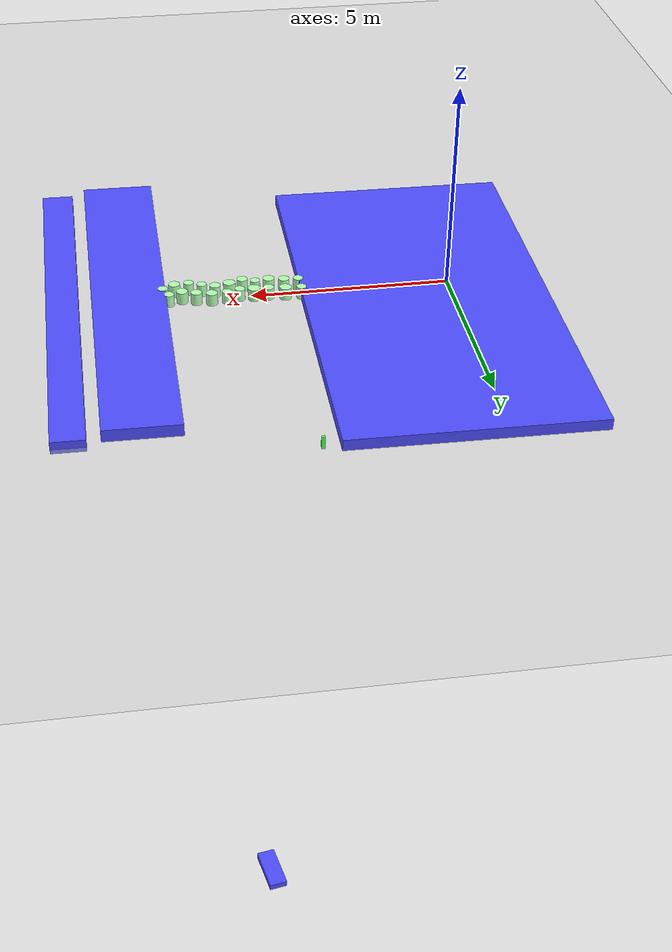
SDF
<sdf version="1.7">
 <world name="default">
  <light name="sun" type="directional">
   <pose>0 0 10 0 -0 0</pose>
   <diffuse>0.8 0.8 0.8 1</diffuse>
   <specular>0.2 0.2 0.2 1</specular>
   <attenuation>
    <range>1000</range>
    <constant>0.9</constant>
    <linear>0.01</linear>
    <quadratic>0.001</quadratic>
   </attenuation>
   <direction>-0.5 0.1 -0.9</direction>
   <spot><inner_angle>0</inner_angle><outer_angle>0</outer_angle><falloff>0</falloff></spot>
  </light>
  <model name="ground_plane">
   <static>1</static>
   <link name="link">
    <collision name="collision">
     <geometry><plane><normal>0 0 1</normal><size>100 100</size></plane></geometry>
     <surface><friction><ode><mu>100</mu><mu2>50</mu2></ode></friction></surface>
    </collision>
    <visual name="visual">
     <cast_shadows>0</cast_shadows>
     <geometry><plane><normal>0 0 1</normal><size>100 100</size></plane></geometry>
     <material>
      <script><uri>file://media/materials/scripts/gazebo.material</uri><name>Gazebo/Grey</name></script>
     </material>
    </visual>
   </link>
  </model>
  <gravity>0 0 -9.8</gravity>
  <magnetic_field>6e-06 2.3e-05 -4.2e-05</magnetic_field>
  <atmosphere type="adiabatic"/>
  <physics type="ode">
   <max_step_size>0.001</max_step_size>
   <real_time_factor>1</real_time_factor>
   <real_time_update_rate>1000</real_time_update_rate>
  </physics>
  <scene><ambient>0.4 0.4 0.4 1</ambient><background>0.7 0.7 0.7 1</background><shadows>1</shadows></scene>
  <spherical_coordinates>
   <surface_model>EARTH_WGS84</surface_model>
   <latitude_deg>0</latitude_deg>
   <longitude_deg>0</longitude_deg>
   <elevation>0</elevation>
   <heading_deg>0</heading_deg>
  </spherical_coordinates>
  <model name="ban_200_80_30_clone_clone">
   <link name="link">
    <inertial>
     <mass>1</mass>
     <inertia>
      <ixx>0.166667</ixx>
      <ixy>0</ixy>
      <ixz>0</ixz>
      <iyy>0.166667</iyy>
      <iyz>0</iyz>
      <izz>0.166667</izz>
     </inertia>
    </inertial>
    <visual name="visual">
     <geometry><box><size>2 0.8 0.3</size></box></geometry>
     <material>
      <script><name>Gazebo/Grey</name><uri>file://media/materials/scripts/gazebo.material</uri></script>
      <shader type="pixel"><normal_map>__default__</normal_map></shader>
      <ambient>0.3 0.3 1 1</ambient>
      <diffuse>0.7 0.7 0.7 1</diffuse>
      <specular>0.01 0.01 0.01 1</specular>
      <emissive>0 0 0 1</emissive>
     </material>
    </visual>
    <collision name="collision">
     <geometry><box><size>2 0.8 0.3</size></box></geometry>
     <surface>
      <friction>
       <ode><mu>1</mu><mu2>1</mu2><fdir1>0 0 0</fdir1><slip1>0</slip1><slip2>0</slip2></ode>
       <torsional>
        <coefficient>1</coefficient>
        <patch_radius>0</patch_radius>
        <surface_radius>0</surface_radius>
        <use_patch_radius>1</use_patch_radius>
        <ode><slip>0</slip></ode>
       </torsional>
      </friction>
      <bounce><restitution_coefficient>0</restitution_coefficient><threshold>1e+06</threshold></bounce>
      <contact>
       <collide_without_contact>0</collide_without_contact>
       <collide_without_contact_bitmask>1</collide_without_contact_bitmask>
       <collide_bitmask>1</collide_bitmask>
       <ode>
        <soft_cfm>0</soft_cfm>
        <soft_erp>0.2</soft_erp>
        <kp>1e+13</kp>
        <kd>1</kd>
        <max_vel>0.01</max_vel>
        <min_depth>0</min_depth>
       </ode>
       <bullet>
        <split_impulse>1</split_impulse>
        <split_impulse_penetration_threshold>-0.01</split_impulse_penetration_threshold>
        <soft_cfm>0</soft_cfm>
        <soft_erp>0.2</soft_erp>
        <kp>1e+13</kp>
        <kd>1</kd>
       </bullet>
      </contact>
     </surface>
    </collision>
   </link>
   <static>1</static>
   <pose>3.32802 -11.2985 -36.3188 0 0 -1.39548</pose>
  </model>
  <model name="ban_400_80_30_clone">
   <link name="link">
    <inertial>
     <mass>1</mass>
     <inertia>
      <ixx>0.166667</ixx>
      <ixy>0</ixy>
      <ixz>0</ixz>
      <iyy>0.166667</iyy>
      <iyz>0</iyz>
      <izz>0.166667</izz>
     </inertia>
    </inertial>
    <visual name="visual">
     <geometry><box><size>11.7457 0.8 0.3</size></box></geometry>
     <material>
      <script><name>Gazebo/Grey</name><uri>file://media/materials/scripts/gazebo.material</uri></script>
      <shader type="pixel"><normal_map>__default__</normal_map></shader>
      <ambient>0.3 0.3 1 1</ambient>
      <diffuse>0.7 0.7 0.7 1</diffuse>
      <specular>0.01 0.01 0.01 1</specular>
      <emissive>0 0 0 1</emissive>
     </material>
    </visual>
    <collision name="collision">
     <geometry><box><size>11.7457 0.8 0.3</size></box></geometry>
     <surface>
      <friction>
       <ode><mu>1</mu><mu2>1</mu2><fdir1>0 0 0</fdir1><slip1>0</slip1><slip2>0</slip2></ode>
       <torsional>
        <coefficient>1</coefficient>
        <patch_radius>0</patch_radius>
        <surface_radius>0</surface_radius>
        <use_patch_radius>1</use_patch_radius>
        <ode><slip>0</slip></ode>
       </torsional>
      </friction>
      <bounce><restitution_coefficient>0</restitution_coefficient><threshold>1e+06</threshold></bounce>
      <contact>
       <collide_without_contact>0</collide_without_contact>
       <collide_without_contact_bitmask>1</collide_without_contact_bitmask>
       <collide_bitmask>1</collide_bitmask>
       <ode>
        <soft_cfm>0</soft_cfm>
        <soft_erp>0.2</soft_erp>
        <kp>1e+13</kp>
        <kd>1</kd>
        <max_vel>0.01</max_vel>
        <min_depth>0</min_depth>
       </ode>
       <bullet>
        <split_impulse>1</split_impulse>
        <split_impulse_penetration_threshold>-0.01</split_impulse_penetration_threshold>
        <soft_cfm>0</soft_cfm>
        <soft_erp>0.2</soft_erp>
        <kp>1e+13</kp>
        <kd>1</kd>
       </bullet>
      </contact>
     </surface>
    </collision>
   </link>
   <static>1</static>
   <pose>9.68721 0.016567 0 0 -0 1.55763</pose>
  </model>
  <model name="mhz_8_30_clone">
   <link name="link">
    <inertial>
     <mass>1</mass>
     <inertia>
      <ixx>0.166667</ixx>
      <ixy>0</ixy>
      <ixz>0</ixz>
      <iyy>0.166667</iyy>
      <iyz>0</iyz>
      <izz>0.166667</izz>
     </inertia>
    </inertial>
    <visual name="visual">
     <geometry><box><size>0.08 0.08 0.3</size></box></geometry>
     <material>
      <script><name>Gazebo/Grey</name><uri>file://media/materials/scripts/gazebo.material</uri></script>
      <shader type="pixel"><normal_map>__default__</normal_map></shader>
      <ambient>0.3 1 0.3 1</ambient>
      <diffuse>0.7 0.7 0.7 1</diffuse>
      <specular>0.01 0.01 0.01 1</specular>
      <emissive>0 0 0 1</emissive>
     </material>
    </visual>
    <collision name="collision">
     <geometry><box><size>0.08 0.08 0.3</size></box></geometry>
     <surface>
      <friction>
       <ode><mu>1</mu><mu2>1</mu2><fdir1>0 0 0</fdir1><slip1>0</slip1><slip2>0</slip2></ode>
       <torsional>
        <coefficient>1</coefficient>
        <patch_radius>0</patch_radius>
        <surface_radius>0</surface_radius>
        <use_patch_radius>1</use_patch_radius>
        <ode><slip>0</slip></ode>
       </torsional>
      </friction>
      <bounce><restitution_coefficient>0</restitution_coefficient><threshold>1e+06</threshold></bounce>
      <contact>
       <collide_without_contact>0</collide_without_contact>
       <collide_without_contact_bitmask>1</collide_without_contact_bitmask>
       <collide_bitmask>1</collide_bitmask>
       <ode>
        <soft_cfm>0</soft_cfm>
        <soft_erp>0.2</soft_erp>
        <kp>1e+13</kp>
        <kd>1</kd>
        <max_vel>0.01</max_vel>
        <min_depth>0</min_depth>
       </ode>
       <bullet>
        <split_impulse>1</split_impulse>
        <split_impulse_penetration_threshold>-0.01</split_impulse_penetration_threshold>
        <soft_cfm>0</soft_cfm>
        <soft_erp>0.2</soft_erp>
        <kp>1e+13</kp>
        <kd>1</kd>
       </bullet>
      </contact>
     </surface>
    </collision>
   </link>
   <static>1</static>
   <pose>4.25594 6.71166 0.134436 0 -0 0</pose>
  </model>
  <model name="ban_400_80_30_clone_clone_clone">
   <link name="link">
    <inertial>
     <mass>1</mass>
     <inertia>
      <ixx>0.166667</ixx>
      <ixy>0</ixy>
      <ixz>0</ixz>
      <iyy>0.166667</iyy>
      <iyz>0</iyz>
      <izz>0.166667</izz>
     </inertia>
    </inertial>
    <visual name="visual">
     <geometry><box><size>11.703 1.83242 0.3</size></box></geometry>
     <material>
      <script><name>Gazebo/Grey</name><uri>file://media/materials/scripts/gazebo.material</uri></script>
      <shader type="pixel"><normal_map>__default__</normal_map></shader>
      <ambient>0.3 0.3 1 1</ambient>
      <diffuse>0.7 0.7 0.7 1</diffuse>
      <specular>0.01 0.01 0.01 1</specular>
      <emissive>0 0 0 1</emissive>
     </material>
    </visual>
    <collision name="collision">
     <geometry><box><size>11.703 1.83242 0.3</size></box></geometry>
     <surface>
      <friction>
       <ode><mu>1</mu><mu2>1</mu2><fdir1>0 0 0</fdir1><slip1>0</slip1><slip2>0</slip2></ode>
       <torsional>
        <coefficient>1</coefficient>
        <patch_radius>0</patch_radius>
        <surface_radius>0</surface_radius>
        <use_patch_radius>1</use_patch_radius>
        <ode><slip>0</slip></ode>
       </torsional>
      </friction>
      <bounce><restitution_coefficient>0</restitution_coefficient><threshold>1e+06</threshold></bounce>
      <contact>
       <collide_without_contact>0</collide_without_contact>
       <collide_without_contact_bitmask>1</collide_without_contact_bitmask>
       <collide_bitmask>1</collide_bitmask>
       <ode>
        <soft_cfm>0</soft_cfm>
        <soft_erp>0.2</soft_erp>
        <kp>1e+13</kp>
        <kd>1</kd>
        <max_vel>0.01</max_vel>
        <min_depth>0</min_depth>
       </ode>
       <bullet>
        <split_impulse>1</split_impulse>
        <split_impulse_penetration_threshold>-0.01</split_impulse_penetration_threshold>
        <soft_cfm>0</soft_cfm>
        <soft_erp>0.2</soft_erp>
        <kp>1e+13</kp>
        <kd>1</kd>
       </bullet>
      </contact>
     </surface>
    </collision>
   </link>
   <static>1</static>
   <pose>8.04186 -0.043434 0.139007 0 -0 1.55763</pose>
  </model>
  <model name="mhz_y_25_30_clone_13_clone_clone_9_clone">
   <link name="link">
    <inertial>
     <mass>1</mass>
     <inertia><ixx>0.145833</ixx><ixy>0</ixy><ixz>0</ixz><iyy>0.145833</iyy><iyz>0</iyz><izz>0.125</izz></inertia>
    </inertial>
    <visual name="visual">
     <geometry><cylinder><radius>0.125</radius><length>0.3</length></cylinder></geometry>
     <material>
      <script><name>Gazebo/Grey</name><uri>file://media/materials/scripts/gazebo.material</uri></script>
      <shader type="pixel"><normal_map>__default__</normal_map></shader>
      <ambient>0 1 0 0</ambient>
      <diffuse>0.7 1 0.7 1</diffuse>
      <specular>0.01 0.01 0.01 1</specular>
      <emissive>0 0 0 1</emissive>
     </material>
    </visual>
    <collision name="collision">
     <geometry><cylinder><radius>0.125</radius><length>0.3</length></cylinder></geometry>
     <surface>
      <friction>
       <ode><mu>1</mu><mu2>1</mu2><fdir1>0 0 0</fdir1><slip1>0</slip1><slip2>0</slip2></ode>
       <torsional>
        <coefficient>1</coefficient>
        <patch_radius>0</patch_radius>
        <surface_radius>0</surface_radius>
        <use_patch_radius>1</use_patch_radius>
        <ode><slip>0</slip></ode>
       </torsional>
      </friction>
      <bounce><restitution_coefficient>0</restitution_coefficient><threshold>1e+06</threshold></bounce>
      <contact>
       <collide_without_contact>0</collide_without_contact>
       <collide_without_contact_bitmask>1</collide_without_contact_bitmask>
       <collide_bitmask>1</collide_bitmask>
       <ode>
        <soft_cfm>0</soft_cfm>
        <soft_erp>0.2</soft_erp>
        <kp>1e+13</kp>
        <kd>1</kd>
        <max_vel>0.01</max_vel>
        <min_depth>0</min_depth>
       </ode>
       <bullet>
        <split_impulse>1</split_impulse>
        <split_impulse_penetration_threshold>-0.01</split_impulse_penetration_threshold>
        <soft_cfm>0</soft_cfm>
        <soft_erp>0.2</soft_erp>
        <kp>1e+13</kp>
        <kd>1</kd>
       </bullet>
      </contact>
     </surface>
    </collision>
   </link>
   <static>1</static>
   <pose>3.75494 0.215148 0.14679 0 -0 0</pose>
  </model>
  <model name="mhz_y_25_30_clone_13_clone_clone_9_clone_0">
   <link name="link">
    <inertial>
     <mass>1</mass>
     <inertia><ixx>0.145833</ixx><ixy>0</ixy><ixz>0</ixz><iyy>0.145833</iyy><iyz>0</iyz><izz>0.125</izz></inertia>
    </inertial>
    <visual name="visual">
     <geometry><cylinder><radius>0.125</radius><length>0.3</length></cylinder></geometry>
     <material>
      <script><name>Gazebo/Grey</name><uri>file://media/materials/scripts/gazebo.material</uri></script>
      <shader type="pixel"><normal_map>__default__</normal_map></shader>
      <ambient>0 1 0 0</ambient>
      <diffuse>0.7 1 0.7 1</diffuse>
      <specular>0.01 0.01 0.01 1</specular>
      <emissive>0 0 0 1</emissive>
     </material>
    </visual>
    <collision name="collision">
     <geometry><cylinder><radius>0.125</radius><length>0.3</length></cylinder></geometry>
     <surface>
      <friction>
       <ode><mu>1</mu><mu2>1</mu2><fdir1>0 0 0</fdir1><slip1>0</slip1><slip2>0</slip2></ode>
       <torsional>
        <coefficient>1</coefficient>
        <patch_radius>0</patch_radius>
        <surface_radius>0</surface_radius>
        <use_patch_radius>1</use_patch_radius>
        <ode><slip>0</slip></ode>
       </torsional>
      </friction>
      <bounce><restitution_coefficient>0</restitution_coefficient><threshold>1e+06</threshold></bounce>
      <contact>
       <collide_without_contact>0</collide_without_contact>
       <collide_without_contact_bitmask>1</collide_without_contact_bitmask>
       <collide_bitmask>1</collide_bitmask>
       <ode>
        <soft_cfm>0</soft_cfm>
        <soft_erp>0.2</soft_erp>
        <kp>1e+13</kp>
        <kd>1</kd>
        <max_vel>0.01</max_vel>
        <min_depth>0</min_depth>
       </ode>
       <bullet>
        <split_impulse>1</split_impulse>
        <split_impulse_penetration_threshold>-0.01</split_impulse_penetration_threshold>
        <soft_cfm>0</soft_cfm>
        <soft_erp>0.2</soft_erp>
        <kp>1e+13</kp>
        <kd>1</kd>
       </bullet>
      </contact>
     </surface>
    </collision>
   </link>
   <static>1</static>
   <pose>3.77586 -0.223314 0.14679 0 -0 0</pose>
  </model>
  <model name="ban_400_80_30_clone_clone_0_clone_clone">
   <link name="link">
    <inertial>
     <mass>1</mass>
     <inertia>
      <ixx>0.166667</ixx>
      <ixy>0</ixy>
      <ixz>0</ixz>
      <iyy>0.166667</iyy>
      <iyz>0</iyz>
      <izz>0.166667</izz>
     </inertia>
    </inertial>
    <visual name="visual">
     <geometry><box><size>11.7457 6.05528 0.274752</size></box></geometry>
     <material>
      <script><name>Gazebo/Grey</name><uri>file://media/materials/scripts/gazebo.material</uri></script>
      <shader type="pixel"><normal_map>__default__</normal_map></shader>
      <ambient>0.3 0.3 1 1</ambient>
      <diffuse>0.7 0.7 0.7 1</diffuse>
      <specular>0.01 0.01 0.01 1</specular>
      <emissive>0 0 0 1</emissive>
     </material>
    </visual>
    <collision name="collision">
     <geometry><box><size>11.7457 6.05528 0.274752</size></box></geometry>
     <surface>
      <friction>
       <ode><mu>1</mu><mu2>1</mu2><fdir1>0 0 0</fdir1><slip1>0</slip1><slip2>0</slip2></ode>
       <torsional>
        <coefficient>1</coefficient>
        <patch_radius>0</patch_radius>
        <surface_radius>0</surface_radius>
        <use_patch_radius>1</use_patch_radius>
        <ode><slip>0</slip></ode>
       </torsional>
      </friction>
      <bounce><restitution_coefficient>0</restitution_coefficient><threshold>1e+06</threshold></bounce>
      <contact>
       <collide_without_contact>0</collide_without_contact>
       <collide_without_contact_bitmask>1</collide_without_contact_bitmask>
       <collide_bitmask>1</collide_bitmask>
       <ode>
        <soft_cfm>0</soft_cfm>
        <soft_erp>0.2</soft_erp>
        <kp>1e+13</kp>
        <kd>1</kd>
        <max_vel>0.01</max_vel>
        <min_depth>0</min_depth>
       </ode>
       <bullet>
        <split_impulse>1</split_impulse>
        <split_impulse_penetration_threshold>-0.01</split_impulse_penetration_threshold>
        <soft_cfm>0</soft_cfm>
        <soft_erp>0.2</soft_erp>
        <kp>1e+13</kp>
        <kd>1</kd>
       </bullet>
      </contact>
     </surface>
    </collision>
   </link>
   <static>1</static>
   <pose>0.760648 1.08367 0.138376 0 -0 1.55763</pose>
  </model>
  <model name="mhz_y_25_30_clone_13_clone_clone_9_clone_0_clone">
   <link name="link">
    <inertial>
     <mass>1</mass>
     <inertia><ixx>0.145833</ixx><ixy>0</ixy><ixz>0</ixz><iyy>0.145833</iyy><iyz>0</iyz><izz>0.125</izz></inertia>
    </inertial>
    <visual name="visual">
     <geometry><cylinder><radius>0.135799</radius><length>0.3</length></cylinder></geometry>
     <material>
      <script><name>Gazebo/Grey</name><uri>file://media/materials/scripts/gazebo.material</uri></script>
      <shader type="pixel"><normal_map>__default__</normal_map></shader>
      <ambient>0 1 0 0</ambient>
      <diffuse>0.7 1 0.7 1</diffuse>
      <specular>0.01 0.01 0.01 1</specular>
      <emissive>0 0 0 1</emissive>
     </material>
    </visual>
    <collision name="collision">
     <geometry><cylinder><radius>0.135799</radius><length>0.3</length></cylinder></geometry>
     <surface>
      <friction>
       <ode><mu>1</mu><mu2>1</mu2><fdir1>0 0 0</fdir1><slip1>0</slip1><slip2>0</slip2></ode>
       <torsional>
        <coefficient>1</coefficient>
        <patch_radius>0</patch_radius>
        <surface_radius>0</surface_radius>
        <use_patch_radius>1</use_patch_radius>
        <ode><slip>0</slip></ode>
       </torsional>
      </friction>
      <bounce><restitution_coefficient>0</restitution_coefficient><threshold>1e+06</threshold></bounce>
      <contact>
       <collide_without_contact>0</collide_without_contact>
       <collide_without_contact_bitmask>1</collide_without_contact_bitmask>
       <collide_bitmask>1</collide_bitmask>
       <ode>
        <soft_cfm>0</soft_cfm>
        <soft_erp>0.2</soft_erp>
        <kp>1e+13</kp>
        <kd>1</kd>
        <max_vel>0.01</max_vel>
        <min_depth>0</min_depth>
       </ode>
       <bullet>
        <split_impulse>1</split_impulse>
        <split_impulse_penetration_threshold>-0.01</split_impulse_penetration_threshold>
        <soft_cfm>0</soft_cfm>
        <soft_erp>0.2</soft_erp>
        <kp>1e+13</kp>
        <kd>1</kd>
       </bullet>
      </contact>
     </surface>
    </collision>
   </link>
   <static>1</static>
   <pose>4.13513 -0.244411 0.14679 0 -0 0</pose>
  </model>
  <model name="mhz_y_25_30_clone_13_clone_clone_9_clone_0_clone_clone">
   <link name="link">
    <inertial>
     <mass>1</mass>
     <inertia><ixx>0.145833</ixx><ixy>0</ixy><ixz>0</ixz><iyy>0.145833</iyy><iyz>0</iyz><izz>0.125</izz></inertia>
    </inertial>
    <visual name="visual">
     <geometry><cylinder><radius>0.15149</radius><length>0.3</length></cylinder></geometry>
     <material>
      <script><name>Gazebo/Grey</name><uri>file://media/materials/scripts/gazebo.material</uri></script>
      <shader type="pixel"><normal_map>__default__</normal_map></shader>
      <ambient>0 1 0 0</ambient>
      <diffuse>0.7 1 0.7 1</diffuse>
      <specular>0.01 0.01 0.01 1</specular>
      <emissive>0 0 0 1</emissive>
     </material>
    </visual>
    <collision name="collision">
     <geometry><cylinder><radius>0.15149</radius><length>0.3</length></cylinder></geometry>
     <surface>
      <friction>
       <ode><mu>1</mu><mu2>1</mu2><fdir1>0 0 0</fdir1><slip1>0</slip1><slip2>0</slip2></ode>
       <torsional>
        <coefficient>1</coefficient>
        <patch_radius>0</patch_radius>
        <surface_radius>0</surface_radius>
        <use_patch_radius>1</use_patch_radius>
        <ode><slip>0</slip></ode>
       </torsional>
      </friction>
      <bounce><restitution_coefficient>0</restitution_coefficient><threshold>1e+06</threshold></bounce>
      <contact>
       <collide_without_contact>0</collide_without_contact>
       <collide_without_contact_bitmask>1</collide_without_contact_bitmask>
       <collide_bitmask>1</collide_bitmask>
       <ode>
        <soft_cfm>0</soft_cfm>
        <soft_erp>0.2</soft_erp>
        <kp>1e+13</kp>
        <kd>1</kd>
        <max_vel>0.01</max_vel>
        <min_depth>0</min_depth>
       </ode>
       <bullet>
        <split_impulse>1</split_impulse>
        <split_impulse_penetration_threshold>-0.01</split_impulse_penetration_threshold>
        <soft_cfm>0</soft_cfm>
        <soft_erp>0.2</soft_erp>
        <kp>1e+13</kp>
        <kd>1</kd>
       </bullet>
      </contact>
     </surface>
    </collision>
   </link>
   <static>1</static>
   <pose>4.15198 0.187283 0.14679 0 -0 0</pose>
  </model>
  <model name="mhz_y_25_30_clone_13_clone_clone_9_clone_0_clone_clone_0">
   <link name="link">
    <inertial>
     <mass>1</mass>
     <inertia><ixx>0.145833</ixx><ixy>0</ixy><ixz>0</ixz><iyy>0.145833</iyy><iyz>0</iyz><izz>0.125</izz></inertia>
    </inertial>
    <visual name="visual">
     <geometry><cylinder><radius>0.144423</radius><length>0.3</length></cylinder></geometry>
     <material>
      <script><name>Gazebo/Grey</name><uri>file://media/materials/scripts/gazebo.material</uri></script>
      <shader type="pixel"><normal_map>__default__</normal_map></shader>
      <ambient>0 1 0 0</ambient>
      <diffuse>0.7 1 0.7 1</diffuse>
      <specular>0.01 0.01 0.01 1</specular>
      <emissive>0 0 0 1</emissive>
     </material>
    </visual>
    <collision name="collision">
     <geometry><cylinder><radius>0.144423</radius><length>0.3</length></cylinder></geometry>
     <surface>
      <friction>
       <ode><mu>1</mu><mu2>1</mu2><fdir1>0 0 0</fdir1><slip1>0</slip1><slip2>0</slip2></ode>
       <torsional>
        <coefficient>1</coefficient>
        <patch_radius>0</patch_radius>
        <surface_radius>0</surface_radius>
        <use_patch_radius>1</use_patch_radius>
        <ode><slip>0</slip></ode>
       </torsional>
      </friction>
      <bounce><restitution_coefficient>0</restitution_coefficient><threshold>1e+06</threshold></bounce>
      <contact>
       <collide_without_contact>0</collide_without_contact>
       <collide_without_contact_bitmask>1</collide_without_contact_bitmask>
       <collide_bitmask>1</collide_bitmask>
       <ode>
        <soft_cfm>0</soft_cfm>
        <soft_erp>0.2</soft_erp>
        <kp>1e+13</kp>
        <kd>1</kd>
        <max_vel>0.01</max_vel>
        <min_depth>0</min_depth>
       </ode>
       <bullet>
        <split_impulse>1</split_impulse>
        <split_impulse_penetration_threshold>-0.01</split_impulse_penetration_threshold>
        <soft_cfm>0</soft_cfm>
        <soft_erp>0.2</soft_erp>
        <kp>1e+13</kp>
        <kd>1</kd>
       </bullet>
      </contact>
     </surface>
    </collision>
   </link>
   <static>1</static>
   <pose>4.51422 -0.312041 0.14679 0 -0 0</pose>
  </model>
  <model name="mhz_y_25_30_clone_13_clone_clone_9_clone_0_clone_clone_0_clone">
   <link name="link">
    <inertial>
     <mass>1</mass>
     <inertia><ixx>0.145833</ixx><ixy>0</ixy><ixz>0</ixz><iyy>0.145833</iyy><iyz>0</iyz><izz>0.125</izz></inertia>
    </inertial>
    <visual name="visual">
     <geometry><cylinder><radius>0.132128</radius><length>0.3</length></cylinder></geometry>
     <material>
      <script><name>Gazebo/Grey</name><uri>file://media/materials/scripts/gazebo.material</uri></script>
      <shader type="pixel"><normal_map>__default__</normal_map></shader>
      <ambient>0 1 0 0</ambient>
      <diffuse>0.7 1 0.7 1</diffuse>
      <specular>0.01 0.01 0.01 1</specular>
      <emissive>0 0 0 1</emissive>
     </material>
    </visual>
    <collision name="collision">
     <geometry><cylinder><radius>0.132128</radius><length>0.3</length></cylinder></geometry>
     <surface>
      <friction>
       <ode><mu>1</mu><mu2>1</mu2><fdir1>0 0 0</fdir1><slip1>0</slip1><slip2>0</slip2></ode>
       <torsional>
        <coefficient>1</coefficient>
        <patch_radius>0</patch_radius>
        <surface_radius>0</surface_radius>
        <use_patch_radius>1</use_patch_radius>
        <ode><slip>0</slip></ode>
       </torsional>
      </friction>
      <bounce><restitution_coefficient>0</restitution_coefficient><threshold>1e+06</threshold></bounce>
      <contact>
       <collide_without_contact>0</collide_without_contact>
       <collide_without_contact_bitmask>1</collide_without_contact_bitmask>
       <collide_bitmask>1</collide_bitmask>
       <ode>
        <soft_cfm>0</soft_cfm>
        <soft_erp>0.2</soft_erp>
        <kp>1e+13</kp>
        <kd>1</kd>
        <max_vel>0.01</max_vel>
        <min_depth>0</min_depth>
       </ode>
       <bullet>
        <split_impulse>1</split_impulse>
        <split_impulse_penetration_threshold>-0.01</split_impulse_penetration_threshold>
        <soft_cfm>0</soft_cfm>
        <soft_erp>0.2</soft_erp>
        <kp>1e+13</kp>
        <kd>1</kd>
       </bullet>
      </contact>
     </surface>
    </collision>
   </link>
   <static>1</static>
   <pose>4.56179 0.130108 0.14679 0 -0 0</pose>
  </model>
  <model name="mhz_y_25_30_clone_13_clone_clone_9_clone_0_clone_clone_0_clone_0">
   <link name="link">
    <inertial>
     <mass>1</mass>
     <inertia><ixx>0.145833</ixx><ixy>0</ixy><ixz>0</ixz><iyy>0.145833</iyy><iyz>0</iyz><izz>0.125</izz></inertia>
    </inertial>
    <visual name="visual">
     <geometry><cylinder><radius>0.125</radius><length>0.3</length></cylinder></geometry>
     <material>
      <script><name>Gazebo/Grey</name><uri>file://media/materials/scripts/gazebo.material</uri></script>
      <shader type="pixel"><normal_map>__default__</normal_map></shader>
      <ambient>0 1 0 0</ambient>
      <diffuse>0.7 1 0.7 1</diffuse>
      <specular>0.01 0.01 0.01 1</specular>
      <emissive>0 0 0 1</emissive>
     </material>
    </visual>
    <collision name="collision">
     <geometry><cylinder><radius>0.125</radius><length>0.3</length></cylinder></geometry>
     <surface>
      <friction>
       <ode><mu>1</mu><mu2>1</mu2><fdir1>0 0 0</fdir1><slip1>0</slip1><slip2>0</slip2></ode>
       <torsional>
        <coefficient>1</coefficient>
        <patch_radius>0</patch_radius>
        <surface_radius>0</surface_radius>
        <use_patch_radius>1</use_patch_radius>
        <ode><slip>0</slip></ode>
       </torsional>
      </friction>
      <bounce><restitution_coefficient>0</restitution_coefficient><threshold>1e+06</threshold></bounce>
      <contact>
       <collide_without_contact>0</collide_without_contact>
       <collide_without_contact_bitmask>1</collide_without_contact_bitmask>
       <collide_bitmask>1</collide_bitmask>
       <ode>
        <soft_cfm>0</soft_cfm>
        <soft_erp>0.2</soft_erp>
        <kp>1e+13</kp>
        <kd>1</kd>
        <max_vel>0.01</max_vel>
        <min_depth>0</min_depth>
       </ode>
       <bullet>
        <split_impulse>1</split_impulse>
        <split_impulse_penetration_threshold>-0.01</split_impulse_penetration_threshold>
        <soft_cfm>0</soft_cfm>
        <soft_erp>0.2</soft_erp>
        <kp>1e+13</kp>
        <kd>1</kd>
       </bullet>
      </contact>
     </surface>
    </collision>
   </link>
   <static>1</static>
   <pose>4.86441 -0.257855 0.14679 0 -0 0</pose>
  </model>
  <model name="mhz_y_25_30_clone_13_clone_clone_9_clone_0_clone_clone_0_clone_clone">
   <link name="link">
    <inertial>
     <mass>1</mass>
     <inertia><ixx>0.145833</ixx><ixy>0</ixy><ixz>0</ixz><iyy>0.145833</iyy><iyz>0</iyz><izz>0.125</izz></inertia>
    </inertial>
    <visual name="visual">
     <geometry><cylinder><radius>0.156911</radius><length>0.3</length></cylinder></geometry>
     <material>
      <script><name>Gazebo/Grey</name><uri>file://media/materials/scripts/gazebo.material</uri></script>
      <shader type="pixel"><normal_map>__default__</normal_map></shader>
      <ambient>0 1 0 0</ambient>
      <diffuse>0.7 1 0.7 1</diffuse>
      <specular>0.01 0.01 0.01 1</specular>
      <emissive>0 0 0 1</emissive>
     </material>
    </visual>
    <collision name="collision">
     <geometry><cylinder><radius>0.156911</radius><length>0.3</length></cylinder></geometry>
     <surface>
      <friction>
       <ode><mu>1</mu><mu2>1</mu2><fdir1>0 0 0</fdir1><slip1>0</slip1><slip2>0</slip2></ode>
       <torsional>
        <coefficient>1</coefficient>
        <patch_radius>0</patch_radius>
        <surface_radius>0</surface_radius>
        <use_patch_radius>1</use_patch_radius>
        <ode><slip>0</slip></ode>
       </torsional>
      </friction>
      <bounce><restitution_coefficient>0</restitution_coefficient><threshold>1e+06</threshold></bounce>
      <contact>
       <collide_without_contact>0</collide_without_contact>
       <collide_without_contact_bitmask>1</collide_without_contact_bitmask>
       <collide_bitmask>1</collide_bitmask>
       <ode>
        <soft_cfm>0</soft_cfm>
        <soft_erp>0.2</soft_erp>
        <kp>1e+13</kp>
        <kd>1</kd>
        <max_vel>0.01</max_vel>
        <min_depth>0</min_depth>
       </ode>
       <bullet>
        <split_impulse>1</split_impulse>
        <split_impulse_penetration_threshold>-0.01</split_impulse_penetration_threshold>
        <soft_cfm>0</soft_cfm>
        <soft_erp>0.2</soft_erp>
        <kp>1e+13</kp>
        <kd>1</kd>
       </bullet>
      </contact>
     </surface>
    </collision>
   </link>
   <static>1</static>
   <pose>4.93275 0.119572 0.14679 0 -0 0</pose>
  </model>
  <model name="mhz_y_25_30_clone_13_clone_clone_9_clone_0_clone_clone_0_clone_0_clone">
   <link name="link">
    <inertial>
     <mass>1</mass>
     <inertia><ixx>0.145833</ixx><ixy>0</ixy><ixz>0</ixz><iyy>0.145833</iyy><iyz>0</iyz><izz>0.125</izz></inertia>
    </inertial>
    <visual name="visual">
     <geometry><cylinder><radius>0.136343</radius><length>0.3</length></cylinder></geometry>
     <material>
      <script><name>Gazebo/Grey</name><uri>file://media/materials/scripts/gazebo.material</uri></script>
      <shader type="pixel"><normal_map>__default__</normal_map></shader>
      <ambient>0 1 0 0</ambient>
      <diffuse>0.7 1 0.7 1</diffuse>
      <specular>0.01 0.01 0.01 1</specular>
      <emissive>0 0 0 1</emissive>
     </material>
    </visual>
    <collision name="collision">
     <geometry><cylinder><radius>0.136343</radius><length>0.3</length></cylinder></geometry>
     <surface>
      <friction>
       <ode><mu>1</mu><mu2>1</mu2><fdir1>0 0 0</fdir1><slip1>0</slip1><slip2>0</slip2></ode>
       <torsional>
        <coefficient>1</coefficient>
        <patch_radius>0</patch_radius>
        <surface_radius>0</surface_radius>
        <use_patch_radius>1</use_patch_radius>
        <ode><slip>0</slip></ode>
       </torsional>
      </friction>
      <bounce><restitution_coefficient>0</restitution_coefficient><threshold>1e+06</threshold></bounce>
      <contact>
       <collide_without_contact>0</collide_without_contact>
       <collide_without_contact_bitmask>1</collide_without_contact_bitmask>
       <collide_bitmask>1</collide_bitmask>
       <ode>
        <soft_cfm>0</soft_cfm>
        <soft_erp>0.2</soft_erp>
        <kp>1e+13</kp>
        <kd>1</kd>
        <max_vel>0.01</max_vel>
        <min_depth>0</min_depth>
       </ode>
       <bullet>
        <split_impulse>1</split_impulse>
        <split_impulse_penetration_threshold>-0.01</split_impulse_penetration_threshold>
        <soft_cfm>0</soft_cfm>
        <soft_erp>0.2</soft_erp>
        <kp>1e+13</kp>
        <kd>1</kd>
       </bullet>
      </contact>
     </surface>
    </collision>
   </link>
   <static>1</static>
   <pose>5.17535 -0.375834 0.14679 0 -0 0</pose>
  </model>
  <model name="mhz_y_25_30_clone_13_clone_clone_9_clone_0_clone_clone_0_clone_0_clone_clone">
   <link name="link">
    <inertial>
     <mass>1</mass>
     <inertia><ixx>0.145833</ixx><ixy>0</ixy><ixz>0</ixz><iyy>0.145833</iyy><iyz>0</iyz><izz>0.125</izz></inertia>
    </inertial>
    <visual name="visual">
     <geometry><cylinder><radius>0.128775</radius><length>0.3</length></cylinder></geometry>
     <material>
      <script><name>Gazebo/Grey</name><uri>file://media/materials/scripts/gazebo.material</uri></script>
      <shader type="pixel"><normal_map>__default__</normal_map></shader>
      <ambient>0 1 0 0</ambient>
      <diffuse>0.7 1 0.7 1</diffuse>
      <specular>0.01 0.01 0.01 1</specular>
      <emissive>0 0 0 1</emissive>
     </material>
    </visual>
    <collision name="collision">
     <geometry><cylinder><radius>0.128775</radius><length>0.3</length></cylinder></geometry>
     <surface>
      <friction>
       <ode><mu>1</mu><mu2>1</mu2><fdir1>0 0 0</fdir1><slip1>0</slip1><slip2>0</slip2></ode>
       <torsional>
        <coefficient>1</coefficient>
        <patch_radius>0</patch_radius>
        <surface_radius>0</surface_radius>
        <use_patch_radius>1</use_patch_radius>
        <ode><slip>0</slip></ode>
       </torsional>
      </friction>
      <bounce><restitution_coefficient>0</restitution_coefficient><threshold>1e+06</threshold></bounce>
      <contact>
       <collide_without_contact>0</collide_without_contact>
       <collide_without_contact_bitmask>1</collide_without_contact_bitmask>
       <collide_bitmask>1</collide_bitmask>
       <ode>
        <soft_cfm>0</soft_cfm>
        <soft_erp>0.2</soft_erp>
        <kp>1e+13</kp>
        <kd>1</kd>
        <max_vel>0.01</max_vel>
        <min_depth>0</min_depth>
       </ode>
       <bullet>
        <split_impulse>1</split_impulse>
        <split_impulse_penetration_threshold>-0.01</split_impulse_penetration_threshold>
        <soft_cfm>0</soft_cfm>
        <soft_erp>0.2</soft_erp>
        <kp>1e+13</kp>
        <kd>1</kd>
       </bullet>
      </contact>
     </surface>
    </collision>
   </link>
   <static>1</static>
   <pose>5.28548 0.100482 0.14679 0 -0 0</pose>
  </model>
  <model name="mhz_y_25_30_clone_13_clone_clone_9_clone_0_clone_clone_0_clone_0_clone_clone_clone">
   <link name="link">
    <inertial>
     <mass>1</mass>
     <inertia><ixx>0.145833</ixx><ixy>0</ixy><ixz>0</ixz><iyy>0.145833</iyy><iyz>0</iyz><izz>0.125</izz></inertia>
    </inertial>
    <visual name="visual">
     <geometry><cylinder><radius>0.151445</radius><length>0.3</length></cylinder></geometry>
     <material>
      <script><name>Gazebo/Grey</name><uri>file://media/materials/scripts/gazebo.material</uri></script>
      <shader type="pixel"><normal_map>__default__</normal_map></shader>
      <ambient>0 1 0 0</ambient>
      <diffuse>0.7 1 0.7 1</diffuse>
      <specular>0.01 0.01 0.01 1</specular>
      <emissive>0 0 0 1</emissive>
     </material>
    </visual>
    <collision name="collision">
     <geometry><cylinder><radius>0.151445</radius><length>0.3</length></cylinder></geometry>
     <surface>
      <friction>
       <ode><mu>1</mu><mu2>1</mu2><fdir1>0 0 0</fdir1><slip1>0</slip1><slip2>0</slip2></ode>
       <torsional>
        <coefficient>1</coefficient>
        <patch_radius>0</patch_radius>
        <surface_radius>0</surface_radius>
        <use_patch_radius>1</use_patch_radius>
        <ode><slip>0</slip></ode>
       </torsional>
      </friction>
      <bounce><restitution_coefficient>0</restitution_coefficient><threshold>1e+06</threshold></bounce>
      <contact>
       <collide_without_contact>0</collide_without_contact>
       <collide_without_contact_bitmask>1</collide_without_contact_bitmask>
       <collide_bitmask>1</collide_bitmask>
       <ode>
        <soft_cfm>0</soft_cfm>
        <soft_erp>0.2</soft_erp>
        <kp>1e+13</kp>
        <kd>1</kd>
        <max_vel>0.01</max_vel>
        <min_depth>0</min_depth>
       </ode>
       <bullet>
        <split_impulse>1</split_impulse>
        <split_impulse_penetration_threshold>-0.01</split_impulse_penetration_threshold>
        <soft_cfm>0</soft_cfm>
        <soft_erp>0.2</soft_erp>
        <kp>1e+13</kp>
        <kd>1</kd>
       </bullet>
      </contact>
     </surface>
    </collision>
   </link>
   <static>1</static>
   <pose>5.51402 -0.239631 0.14679 0 -0 0</pose>
  </model>
  <model name="mhz_y_25_30_clone_13_clone_clone_9_clone_0_clone_clone_0_clone_0_clone_clone_clone_clone">
   <link name="link">
    <inertial>
     <mass>1</mass>
     <inertia><ixx>0.145833</ixx><ixy>0</ixy><ixz>0</ixz><iyy>0.145833</iyy><iyz>0</iyz><izz>0.125</izz></inertia>
    </inertial>
    <visual name="visual">
     <geometry><cylinder><radius>0.125</radius><length>0.3</length></cylinder></geometry>
     <material>
      <script><name>Gazebo/Grey</name><uri>file://media/materials/scripts/gazebo.material</uri></script>
      <shader type="pixel"><normal_map>__default__</normal_map></shader>
      <ambient>0 1 0 0</ambient>
      <diffuse>0.7 1 0.7 1</diffuse>
      <specular>0.01 0.01 0.01 1</specular>
      <emissive>0 0 0 1</emissive>
     </material>
    </visual>
    <collision name="collision">
     <geometry><cylinder><radius>0.125</radius><length>0.3</length></cylinder></geometry>
     <surface>
      <friction>
       <ode><mu>1</mu><mu2>1</mu2><fdir1>0 0 0</fdir1><slip1>0</slip1><slip2>0</slip2></ode>
       <torsional>
        <coefficient>1</coefficient>
        <patch_radius>0</patch_radius>
        <surface_radius>0</surface_radius>
        <use_patch_radius>1</use_patch_radius>
        <ode><slip>0</slip></ode>
       </torsional>
      </friction>
      <bounce><restitution_coefficient>0</restitution_coefficient><threshold>1e+06</threshold></bounce>
      <contact>
       <collide_without_contact>0</collide_without_contact>
       <collide_without_contact_bitmask>1</collide_without_contact_bitmask>
       <collide_bitmask>1</collide_bitmask>
       <ode>
        <soft_cfm>0</soft_cfm>
        <soft_erp>0.2</soft_erp>
        <kp>1e+13</kp>
        <kd>1</kd>
        <max_vel>0.01</max_vel>
        <min_depth>0</min_depth>
       </ode>
       <bullet>
        <split_impulse>1</split_impulse>
        <split_impulse_penetration_threshold>-0.01</split_impulse_penetration_threshold>
        <soft_cfm>0</soft_cfm>
        <soft_erp>0.2</soft_erp>
        <kp>1e+13</kp>
        <kd>1</kd>
       </bullet>
      </contact>
     </surface>
    </collision>
   </link>
   <static>1</static>
   <pose>5.61486 0.195523 0.14679 0 -0 0</pose>
  </model>
  <model name="mhz_y_25_30_clone_13_clone_clone_9_clone_0_clone_clone_0_clone_0_clone_clone_clone_clone_clone">
   <link name="link">
    <inertial>
     <mass>1</mass>
     <inertia><ixx>0.145833</ixx><ixy>0</ixy><ixz>0</ixz><iyy>0.145833</iyy><iyz>0</iyz><izz>0.125</izz></inertia>
    </inertial>
    <visual name="visual">
     <geometry><cylinder><radius>0.139046</radius><length>0.3</length></cylinder></geometry>
     <material>
      <script><name>Gazebo/Grey</name><uri>file://media/materials/scripts/gazebo.material</uri></script>
      <shader type="pixel"><normal_map>__default__</normal_map></shader>
      <ambient>0 1 0 0</ambient>
      <diffuse>0.7 1 0.7 1</diffuse>
      <specular>0.01 0.01 0.01 1</specular>
      <emissive>0 0 0 1</emissive>
     </material>
    </visual>
    <collision name="collision">
     <geometry><cylinder><radius>0.139046</radius><length>0.3</length></cylinder></geometry>
     <surface>
      <friction>
       <ode><mu>1</mu><mu2>1</mu2><fdir1>0 0 0</fdir1><slip1>0</slip1><slip2>0</slip2></ode>
       <torsional>
        <coefficient>1</coefficient>
        <patch_radius>0</patch_radius>
        <surface_radius>0</surface_radius>
        <use_patch_radius>1</use_patch_radius>
        <ode><slip>0</slip></ode>
       </torsional>
      </friction>
      <bounce><restitution_coefficient>0</restitution_coefficient><threshold>1e+06</threshold></bounce>
      <contact>
       <collide_without_contact>0</collide_without_contact>
       <collide_without_contact_bitmask>1</collide_without_contact_bitmask>
       <collide_bitmask>1</collide_bitmask>
       <ode>
        <soft_cfm>0</soft_cfm>
        <soft_erp>0.2</soft_erp>
        <kp>1e+13</kp>
        <kd>1</kd>
        <max_vel>0.01</max_vel>
        <min_depth>0</min_depth>
       </ode>
       <bullet>
        <split_impulse>1</split_impulse>
        <split_impulse_penetration_threshold>-0.01</split_impulse_penetration_threshold>
        <soft_cfm>0</soft_cfm>
        <soft_erp>0.2</soft_erp>
        <kp>1e+13</kp>
        <kd>1</kd>
       </bullet>
      </contact>
     </surface>
    </collision>
   </link>
   <static>1</static>
   <pose>5.88282 -0.157693 0.14679 0 -0 0</pose>
  </model>
  <model name="mhz_y_25_30_clone_13_clone_clone_9_clone_0_clone_clone_0_clone_0_clone_clone_clone_clone_clone_clone">
   <link name="link">
    <inertial>
     <mass>1</mass>
     <inertia><ixx>0.145833</ixx><ixy>0</ixy><ixz>0</ixz><iyy>0.145833</iyy><iyz>0</iyz><izz>0.125</izz></inertia>
    </inertial>
    <visual name="visual">
     <geometry><cylinder><radius>0.142831</radius><length>0.3</length></cylinder></geometry>
     <material>
      <script><name>Gazebo/Grey</name><uri>file://media/materials/scripts/gazebo.material</uri></script>
      <shader type="pixel"><normal_map>__default__</normal_map></shader>
      <ambient>0 1 0 0</ambient>
      <diffuse>0.7 1 0.7 1</diffuse>
      <specular>0.01 0.01 0.01 1</specular>
      <emissive>0 0 0 1</emissive>
     </material>
    </visual>
    <collision name="collision">
     <geometry><cylinder><radius>0.142831</radius><length>0.3</length></cylinder></geometry>
     <surface>
      <friction>
       <ode><mu>1</mu><mu2>1</mu2><fdir1>0 0 0</fdir1><slip1>0</slip1><slip2>0</slip2></ode>
       <torsional>
        <coefficient>1</coefficient>
        <patch_radius>0</patch_radius>
        <surface_radius>0</surface_radius>
        <use_patch_radius>1</use_patch_radius>
        <ode><slip>0</slip></ode>
       </torsional>
      </friction>
      <bounce><restitution_coefficient>0</restitution_coefficient><threshold>1e+06</threshold></bounce>
      <contact>
       <collide_without_contact>0</collide_without_contact>
       <collide_without_contact_bitmask>1</collide_without_contact_bitmask>
       <collide_bitmask>1</collide_bitmask>
       <ode>
        <soft_cfm>0</soft_cfm>
        <soft_erp>0.2</soft_erp>
        <kp>1e+13</kp>
        <kd>1</kd>
        <max_vel>0.01</max_vel>
        <min_depth>0</min_depth>
       </ode>
       <bullet>
        <split_impulse>1</split_impulse>
        <split_impulse_penetration_threshold>-0.01</split_impulse_penetration_threshold>
        <soft_cfm>0</soft_cfm>
        <soft_erp>0.2</soft_erp>
        <kp>1e+13</kp>
        <kd>1</kd>
       </bullet>
      </contact>
     </surface>
    </collision>
   </link>
   <static>1</static>
   <pose>5.99607 0.208113 0.14679 0 -0 0</pose>
  </model>
  <model name="mhz_y_25_30_clone_13_clone_clone_9_clone_0_clone_clone_0_clone_0_clone_clone_clone_clone_clone_clone_0">
   <link name="link">
    <inertial>
     <mass>1</mass>
     <inertia><ixx>0.145833</ixx><ixy>0</ixy><ixz>0</ixz><iyy>0.145833</iyy><iyz>0</iyz><izz>0.125</izz></inertia>
    </inertial>
    <visual name="visual">
     <geometry><cylinder><radius>0.125</radius><length>0.3</length></cylinder></geometry>
     <material>
      <script><name>Gazebo/Grey</name><uri>file://media/materials/scripts/gazebo.material</uri></script>
      <shader type="pixel"><normal_map>__default__</normal_map></shader>
      <ambient>0 1 0 0</ambient>
      <diffuse>0.7 1 0.7 1</diffuse>
      <specular>0.01 0.01 0.01 1</specular>
      <emissive>0 0 0 1</emissive>
     </material>
    </visual>
    <collision name="collision">
     <geometry><cylinder><radius>0.125</radius><length>0.3</length></cylinder></geometry>
     <surface>
      <friction>
       <ode><mu>1</mu><mu2>1</mu2><fdir1>0 0 0</fdir1><slip1>0</slip1><slip2>0</slip2></ode>
       <torsional>
        <coefficient>1</coefficient>
        <patch_radius>0</patch_radius>
        <surface_radius>0</surface_radius>
        <use_patch_radius>1</use_patch_radius>
        <ode><slip>0</slip></ode>
       </torsional>
      </friction>
      <bounce><restitution_coefficient>0</restitution_coefficient><threshold>1e+06</threshold></bounce>
      <contact>
       <collide_without_contact>0</collide_without_contact>
       <collide_without_contact_bitmask>1</collide_without_contact_bitmask>
       <collide_bitmask>1</collide_bitmask>
       <ode>
        <soft_cfm>0</soft_cfm>
        <soft_erp>0.2</soft_erp>
        <kp>1e+13</kp>
        <kd>1</kd>
        <max_vel>0.01</max_vel>
        <min_depth>0</min_depth>
       </ode>
       <bullet>
        <split_impulse>1</split_impulse>
        <split_impulse_penetration_threshold>-0.01</split_impulse_penetration_threshold>
        <soft_cfm>0</soft_cfm>
        <soft_erp>0.2</soft_erp>
        <kp>1e+13</kp>
        <kd>1</kd>
       </bullet>
      </contact>
     </surface>
    </collision>
   </link>
   <static>1</static>
   <pose>6.20414 -0.259766 0.14679 0 -0 0</pose>
  </model>
  <model name="mhz_y_25_30_clone_13_clone_clone_9_clone_0_clone_clone_0_clone_0_clone_clone_clone_clone_clone_clone_0_clone">
   <link name="link">
    <inertial>
     <mass>1</mass>
     <inertia><ixx>0.145833</ixx><ixy>0</ixy><ixz>0</ixz><iyy>0.145833</iyy><iyz>0</iyz><izz>0.125</izz></inertia>
    </inertial>
    <visual name="visual">
     <geometry><cylinder><radius>0.142272</radius><length>0.3</length></cylinder></geometry>
     <material>
      <script><name>Gazebo/Grey</name><uri>file://media/materials/scripts/gazebo.material</uri></script>
      <shader type="pixel"><normal_map>__default__</normal_map></shader>
      <ambient>0 1 0 0</ambient>
      <diffuse>0.7 1 0.7 1</diffuse>
      <specular>0.01 0.01 0.01 1</specular>
      <emissive>0 0 0 1</emissive>
     </material>
    </visual>
    <collision name="collision">
     <geometry><cylinder><radius>0.142272</radius><length>0.3</length></cylinder></geometry>
     <surface>
      <friction>
       <ode><mu>1</mu><mu2>1</mu2><fdir1>0 0 0</fdir1><slip1>0</slip1><slip2>0</slip2></ode>
       <torsional>
        <coefficient>1</coefficient>
        <patch_radius>0</patch_radius>
        <surface_radius>0</surface_radius>
        <use_patch_radius>1</use_patch_radius>
        <ode><slip>0</slip></ode>
       </torsional>
      </friction>
      <bounce><restitution_coefficient>0</restitution_coefficient><threshold>1e+06</threshold></bounce>
      <contact>
       <collide_without_contact>0</collide_without_contact>
       <collide_without_contact_bitmask>1</collide_without_contact_bitmask>
       <collide_bitmask>1</collide_bitmask>
       <ode>
        <soft_cfm>0</soft_cfm>
        <soft_erp>0.2</soft_erp>
        <kp>1e+13</kp>
        <kd>1</kd>
        <max_vel>0.01</max_vel>
        <min_depth>0</min_depth>
       </ode>
       <bullet>
        <split_impulse>1</split_impulse>
        <split_impulse_penetration_threshold>-0.01</split_impulse_penetration_threshold>
        <soft_cfm>0</soft_cfm>
        <soft_erp>0.2</soft_erp>
        <kp>1e+13</kp>
        <kd>1</kd>
       </bullet>
      </contact>
     </surface>
    </collision>
   </link>
   <static>1</static>
   <pose>6.37221 0.129368 0.14679 0 -0 0</pose>
  </model>
  <model name="mhz_y_25_30_clone_13_clone_clone_9_clone_0_clone_clone_0_clone_0_clone_clone_clone_clone_clone_clone_0_clone_0">
   <link name="link">
    <inertial>
     <mass>1</mass>
     <inertia><ixx>0.145833</ixx><ixy>0</ixy><ixz>0</ixz><iyy>0.145833</iyy><iyz>0</iyz><izz>0.125</izz></inertia>
    </inertial>
    <visual name="visual">
     <geometry><cylinder><radius>0.125</radius><length>0.3</length></cylinder></geometry>
     <material>
      <script><name>Gazebo/Grey</name><uri>file://media/materials/scripts/gazebo.material</uri></script>
      <shader type="pixel"><normal_map>__default__</normal_map></shader>
      <ambient>0 1 0 0</ambient>
      <diffuse>0.7 1 0.7 1</diffuse>
      <specular>0.01 0.01 0.01 1</specular>
      <emissive>0 0 0 1</emissive>
     </material>
    </visual>
    <collision name="collision">
     <geometry><cylinder><radius>0.125</radius><length>0.3</length></cylinder></geometry>
     <surface>
      <friction>
       <ode><mu>1</mu><mu2>1</mu2><fdir1>0 0 0</fdir1><slip1>0</slip1><slip2>0</slip2></ode>
       <torsional>
        <coefficient>1</coefficient>
        <patch_radius>0</patch_radius>
        <surface_radius>0</surface_radius>
        <use_patch_radius>1</use_patch_radius>
        <ode><slip>0</slip></ode>
       </torsional>
      </friction>
      <bounce><restitution_coefficient>0</restitution_coefficient><threshold>1e+06</threshold></bounce>
      <contact>
       <collide_without_contact>0</collide_without_contact>
       <collide_without_contact_bitmask>1</collide_without_contact_bitmask>
       <collide_bitmask>1</collide_bitmask>
       <ode>
        <soft_cfm>0</soft_cfm>
        <soft_erp>0.2</soft_erp>
        <kp>1e+13</kp>
        <kd>1</kd>
        <max_vel>0.01</max_vel>
        <min_depth>0</min_depth>
       </ode>
       <bullet>
        <split_impulse>1</split_impulse>
        <split_impulse_penetration_threshold>-0.01</split_impulse_penetration_threshold>
        <soft_cfm>0</soft_cfm>
        <soft_erp>0.2</soft_erp>
        <kp>1e+13</kp>
        <kd>1</kd>
       </bullet>
      </contact>
     </surface>
    </collision>
   </link>
   <static>1</static>
   <pose>6.52109 -0.387049 0.14679 0 -0 0</pose>
  </model>
  <model name="mhz_y_25_30_clone_13_clone_clone_9_clone_0_clone_clone_0_clone_0_clone_clone_clone_clone_clone_clone_0_clone_1">
   <link name="link">
    <inertial>
     <mass>1</mass>
     <inertia><ixx>0.145833</ixx><ixy>0</ixy><ixz>0</ixz><iyy>0.145833</iyy><iyz>0</iyz><izz>0.125</izz></inertia>
    </inertial>
    <visual name="visual">
     <geometry><cylinder><radius>0.145539</radius><length>0.3</length></cylinder></geometry>
     <material>
      <script><name>Gazebo/Grey</name><uri>file://media/materials/scripts/gazebo.material</uri></script>
      <shader type="pixel"><normal_map>__default__</normal_map></shader>
      <ambient>0 1 0 0</ambient>
      <diffuse>0.7 1 0.7 1</diffuse>
      <specular>0.01 0.01 0.01 1</specular>
      <emissive>0 0 0 1</emissive>
     </material>
    </visual>
    <collision name="collision">
     <geometry><cylinder><radius>0.145539</radius><length>0.3</length></cylinder></geometry>
     <surface>
      <friction>
       <ode><mu>1</mu><mu2>1</mu2><fdir1>0 0 0</fdir1><slip1>0</slip1><slip2>0</slip2></ode>
       <torsional>
        <coefficient>1</coefficient>
        <patch_radius>0</patch_radius>
        <surface_radius>0</surface_radius>
        <use_patch_radius>1</use_patch_radius>
        <ode><slip>0</slip></ode>
       </torsional>
      </friction>
      <bounce><restitution_coefficient>0</restitution_coefficient><threshold>1e+06</threshold></bounce>
      <contact>
       <collide_without_contact>0</collide_without_contact>
       <collide_without_contact_bitmask>1</collide_without_contact_bitmask>
       <collide_bitmask>1</collide_bitmask>
       <ode>
        <soft_cfm>0</soft_cfm>
        <soft_erp>0.2</soft_erp>
        <kp>1e+13</kp>
        <kd>1</kd>
        <max_vel>0.01</max_vel>
        <min_depth>0</min_depth>
       </ode>
       <bullet>
        <split_impulse>1</split_impulse>
        <split_impulse_penetration_threshold>-0.01</split_impulse_penetration_threshold>
        <soft_cfm>0</soft_cfm>
        <soft_erp>0.2</soft_erp>
        <kp>1e+13</kp>
        <kd>1</kd>
       </bullet>
      </contact>
     </surface>
    </collision>
   </link>
   <static>1</static>
   <pose>6.71816 0.026763 0.14679 0 -0 0</pose>
  </model>
  <model name="mhz_y_25_30_clone_13_clone_clone_9_clone_0_clone_clone_0_clone_0_clone_clone_clone_clone_clone_clone_0_clone_2">
   <link name="link">
    <inertial>
     <mass>1</mass>
     <inertia><ixx>0.145833</ixx><ixy>0</ixy><ixz>0</ixz><iyy>0.145833</iyy><iyz>0</iyz><izz>0.125</izz></inertia>
    </inertial>
    <visual name="visual">
     <geometry><cylinder><radius>0.143915</radius><length>0.3</length></cylinder></geometry>
     <material>
      <script><name>Gazebo/Grey</name><uri>file://media/materials/scripts/gazebo.material</uri></script>
      <shader type="pixel"><normal_map>__default__</normal_map></shader>
      <ambient>0 1 0 0</ambient>
      <diffuse>0.7 1 0.7 1</diffuse>
      <specular>0.01 0.01 0.01 1</specular>
      <emissive>0 0 0 1</emissive>
     </material>
    </visual>
    <collision name="collision">
     <geometry><cylinder><radius>0.143915</radius><length>0.3</length></cylinder></geometry>
     <surface>
      <friction>
       <ode><mu>1</mu><mu2>1</mu2><fdir1>0 0 0</fdir1><slip1>0</slip1><slip2>0</slip2></ode>
       <torsional>
        <coefficient>1</coefficient>
        <patch_radius>0</patch_radius>
        <surface_radius>0</surface_radius>
        <use_patch_radius>1</use_patch_radius>
        <ode><slip>0</slip></ode>
       </torsional>
      </friction>
      <bounce><restitution_coefficient>0</restitution_coefficient><threshold>1e+06</threshold></bounce>
      <contact>
       <collide_without_contact>0</collide_without_contact>
       <collide_without_contact_bitmask>1</collide_without_contact_bitmask>
       <collide_bitmask>1</collide_bitmask>
       <ode>
        <soft_cfm>0</soft_cfm>
        <soft_erp>0.2</soft_erp>
        <kp>1e+13</kp>
        <kd>1</kd>
        <max_vel>0.01</max_vel>
        <min_depth>0</min_depth>
       </ode>
       <bullet>
        <split_impulse>1</split_impulse>
        <split_impulse_penetration_threshold>-0.01</split_impulse_penetration_threshold>
        <soft_cfm>0</soft_cfm>
        <soft_erp>0.2</soft_erp>
        <kp>1e+13</kp>
        <kd>1</kd>
       </bullet>
      </contact>
     </surface>
    </collision>
   </link>
   <static>1</static>
   <pose>6.88242 -0.360088 0.14679 0 -0 0</pose>
  </model>
  <model name="mhz_y_25_30_clone_13_clone_clone_9_clone_0_clone_clone_0_clone_0_clone_clone_clone_clone_clone_clone_0_clone_1_clone">
   <link name="link">
    <inertial>
     <mass>1</mass>
     <inertia><ixx>0.145833</ixx><ixy>0</ixy><ixz>0</ixz><iyy>0.145833</iyy><iyz>0</iyz><izz>0.125</izz></inertia>
    </inertial>
    <visual name="visual">
     <geometry><cylinder><radius>0.125</radius><length>0.3</length></cylinder></geometry>
     <material>
      <script><name>Gazebo/Grey</name><uri>file://media/materials/scripts/gazebo.material</uri></script>
      <shader type="pixel"><normal_map>__default__</normal_map></shader>
      <ambient>0 1 0 0</ambient>
      <diffuse>0.7 1 0.7 1</diffuse>
      <specular>0.01 0.01 0.01 1</specular>
      <emissive>0 0 0 1</emissive>
     </material>
    </visual>
    <collision name="collision">
     <geometry><cylinder><radius>0.125</radius><length>0.3</length></cylinder></geometry>
     <surface>
      <friction>
       <ode><mu>1</mu><mu2>1</mu2><fdir1>0 0 0</fdir1><slip1>0</slip1><slip2>0</slip2></ode>
       <torsional>
        <coefficient>1</coefficient>
        <patch_radius>0</patch_radius>
        <surface_radius>0</surface_radius>
        <use_patch_radius>1</use_patch_radius>
        <ode><slip>0</slip></ode>
       </torsional>
      </friction>
      <bounce><restitution_coefficient>0</restitution_coefficient><threshold>1e+06</threshold></bounce>
      <contact>
       <collide_without_contact>0</collide_without_contact>
       <collide_without_contact_bitmask>1</collide_without_contact_bitmask>
       <collide_bitmask>1</collide_bitmask>
       <ode>
        <soft_cfm>0</soft_cfm>
        <soft_erp>0.2</soft_erp>
        <kp>1e+13</kp>
        <kd>1</kd>
        <max_vel>0.01</max_vel>
        <min_depth>0</min_depth>
       </ode>
       <bullet>
        <split_impulse>1</split_impulse>
        <split_impulse_penetration_threshold>-0.01</split_impulse_penetration_threshold>
        <soft_cfm>0</soft_cfm>
        <soft_erp>0.2</soft_erp>
        <kp>1e+13</kp>
        <kd>1</kd>
       </bullet>
      </contact>
     </surface>
    </collision>
   </link>
   <static>1</static>
   <pose>7.05081 0.127432 0.14679 0 -0 0</pose>
  </model>
  <model name="mhz_y_25_30_clone_13_clone_clone_9_clone_0_clone_clone_0_clone_0_clone_clone_clone_clone_clone_clone_0_clone_2_clone">
   <link name="link">
    <inertial>
     <mass>1</mass>
     <inertia><ixx>0.145833</ixx><ixy>0</ixy><ixz>0</ixz><iyy>0.145833</iyy><iyz>0</iyz><izz>0.125</izz></inertia>
    </inertial>
    <visual name="visual">
     <geometry><cylinder><radius>0.125</radius><length>0.3</length></cylinder></geometry>
     <material>
      <script><name>Gazebo/Grey</name><uri>file://media/materials/scripts/gazebo.material</uri></script>
      <shader type="pixel"><normal_map>__default__</normal_map></shader>
      <ambient>0 1 0 0</ambient>
      <diffuse>0.7 1 0.7 1</diffuse>
      <specular>0.01 0.01 0.01 1</specular>
      <emissive>0 0 0 1</emissive>
     </material>
    </visual>
    <collision name="collision">
     <geometry><cylinder><radius>0.125</radius><length>0.3</length></cylinder></geometry>
     <surface>
      <friction>
       <ode><mu>1</mu><mu2>1</mu2><fdir1>0 0 0</fdir1><slip1>0</slip1><slip2>0</slip2></ode>
       <torsional>
        <coefficient>1</coefficient>
        <patch_radius>0</patch_radius>
        <surface_radius>0</surface_radius>
        <use_patch_radius>1</use_patch_radius>
        <ode><slip>0</slip></ode>
       </torsional>
      </friction>
      <bounce><restitution_coefficient>0</restitution_coefficient><threshold>1e+06</threshold></bounce>
      <contact>
       <collide_without_contact>0</collide_without_contact>
       <collide_without_contact_bitmask>1</collide_without_contact_bitmask>
       <collide_bitmask>1</collide_bitmask>
       <ode>
        <soft_cfm>0</soft_cfm>
        <soft_erp>0.2</soft_erp>
        <kp>1e+13</kp>
        <kd>1</kd>
        <max_vel>0.01</max_vel>
        <min_depth>0</min_depth>
       </ode>
       <bullet>
        <split_impulse>1</split_impulse>
        <split_impulse_penetration_threshold>-0.01</split_impulse_penetration_threshold>
        <soft_cfm>0</soft_cfm>
        <soft_erp>0.2</soft_erp>
        <kp>1e+13</kp>
        <kd>1</kd>
       </bullet>
      </contact>
     </surface>
    </collision>
   </link>
   <static>1</static>
   <pose>7.17923 -0.178466 0.14679 0 -0 0</pose>
  </model>
 </world>
</sdf>
